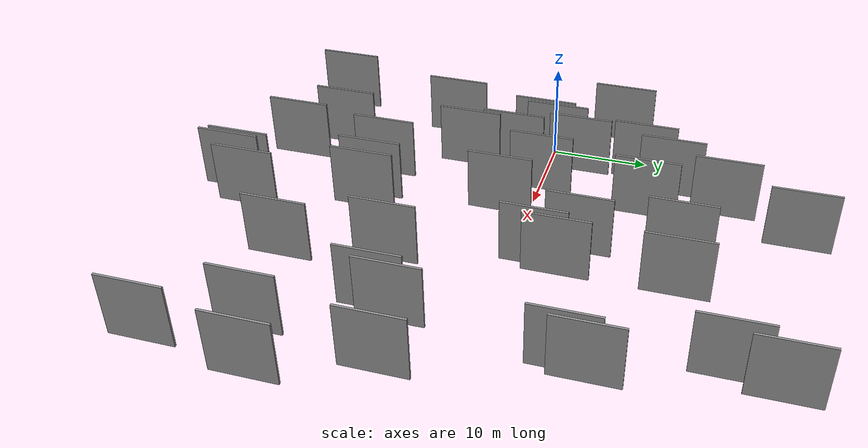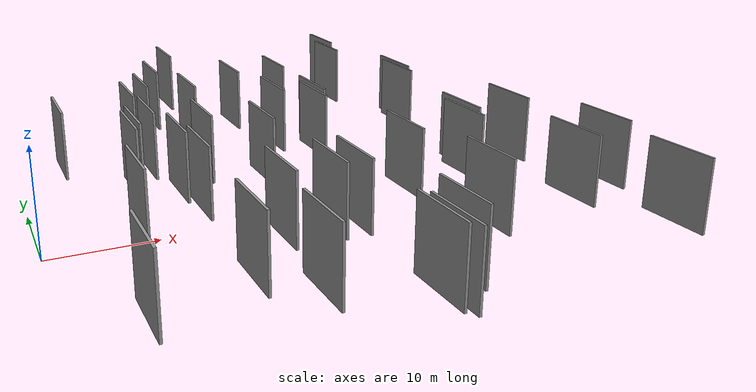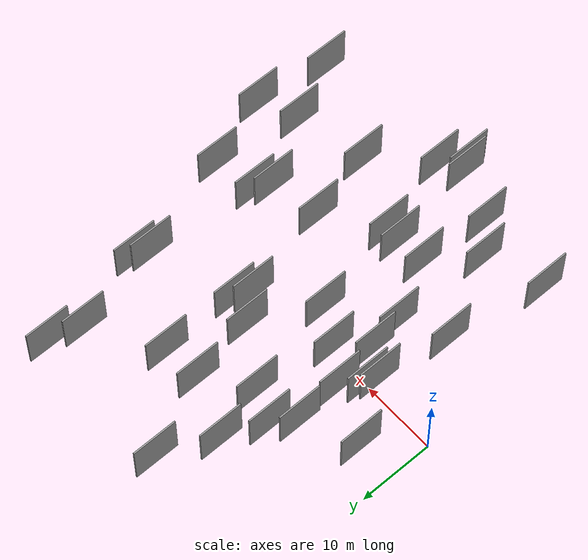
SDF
<sdf version="1.6">
 <world name="default">
  <scene>
   <sky><clouds><speed>12</speed></clouds></sky>
   <ambient>0.4 0.4 0.4 1</ambient>
   <background>0.7 0.7 0.7 1</background>
   <shadows>1</shadows>
  </scene>
  <gravity>0 0 -9.8066</gravity>
  <magnetic_field>6e-06 2.3e-05 -4.2e-05</magnetic_field>
  <physics default="0" name="default_physics" type="ode">
   <ode>
    <solver>
     <type>quick</type>
     <iters>10</iters>
     <sor>1.0</sor>
     <use_dynamic_moi_rescaling>0</use_dynamic_moi_rescaling>
    </solver>
    <constraints>
     <cfm>0</cfm>
     <erp>0.2</erp>
     <contact_max_correcting_vel>100</contact_max_correcting_vel>
     <contact_surface_layer>0.001</contact_surface_layer>
    </constraints>
   </ode>
   <max_step_size>0.004</max_step_size>
   <real_time_factor>1</real_time_factor>
   <real_time_update_rate>250</real_time_update_rate>
  </physics>
  <light name="sun" type="directional">
   <pose>0 0 10 0 0 0</pose>
   <diffuse>0.8 0.8 0.8 1</diffuse>
   <specular>0.2 0.2 0.2 1</specular>
   <attenuation>
    <range>1000</range>
    <constant>0.9</constant>
    <linear>0.01</linear>
    <quadratic>0.001</quadratic>
   </attenuation>
   <direction>-0.5 0.1 -0.9</direction>
  </light>
  <model name="grey_wall_1">
   <static>1</static>
   <pose>3.9259 -21.7571 5.0 0.000000 0.000000 1.570796</pose>
   <link name="link">
    <pose>0 0 3.00 0 0 0</pose>
    <collision name="collision"><geometry><box><size>6.00 0.2 6.00</size></box></geometry></collision>
    <visual name="visual">
     <cast_shadows>0</cast_shadows>
     <geometry><box><size>6.00 0.2 6.00</size></box></geometry>
     <material>
      <script>
       <uri>model://grey_wall/materials/scripts</uri>
       <uri>model://grey_wall/materials/textures</uri>
       <name>vrc/grey_wall</name>
      </script>
     </material>
    </visual>
   </link>
  </model>
  <model name="grey_wall_2">
   <static>1</static>
   <pose>26.8779 5.8839 5.0 0.000000 0.000000 1.570796</pose>
   <link name="link">
    <pose>0 0 3.00 0 0 0</pose>
    <collision name="collision"><geometry><box><size>6.00 0.2 6.00</size></box></geometry></collision>
    <visual name="visual">
     <cast_shadows>0</cast_shadows>
     <geometry><box><size>6.00 0.2 6.00</size></box></geometry>
     <material>
      <script>
       <uri>model://grey_wall/materials/scripts</uri>
       <uri>model://grey_wall/materials/textures</uri>
       <name>vrc/grey_wall</name>
      </script>
     </material>
    </visual>
   </link>
  </model>
  <model name="grey_wall_3">
   <static>1</static>
   <pose>36.7139 25.4663 5.0 0.000000 0.000000 1.570796</pose>
   <link name="link">
    <pose>0 0 3.00 0 0 0</pose>
    <collision name="collision"><geometry><box><size>6.00 0.2 6.00</size></box></geometry></collision>
    <visual name="visual">
     <cast_shadows>0</cast_shadows>
     <geometry><box><size>6.00 0.2 6.00</size></box></geometry>
     <material>
      <script>
       <uri>model://grey_wall/materials/scripts</uri>
       <uri>model://grey_wall/materials/textures</uri>
       <name>vrc/grey_wall</name>
      </script>
     </material>
    </visual>
   </link>
  </model>
  <model name="grey_wall_4">
   <static>1</static>
   <pose>11.3556 -1.8661 5.0 0.000000 0.000000 1.570796</pose>
   <link name="link">
    <pose>0 0 3.00 0 0 0</pose>
    <collision name="collision"><geometry><box><size>6.00 0.2 6.00</size></box></geometry></collision>
    <visual name="visual">
     <cast_shadows>0</cast_shadows>
     <geometry><box><size>6.00 0.2 6.00</size></box></geometry>
     <material>
      <script>
       <uri>model://grey_wall/materials/scripts</uri>
       <uri>model://grey_wall/materials/textures</uri>
       <name>vrc/grey_wall</name>
      </script>
     </material>
    </visual>
   </link>
  </model>
  <model name="grey_wall_5">
   <static>1</static>
   <pose>42.1782 -4.7063 5.0 0.000000 0.000000 1.570796</pose>
   <link name="link">
    <pose>0 0 3.00 0 0 0</pose>
    <collision name="collision"><geometry><box><size>6.00 0.2 6.00</size></box></geometry></collision>
    <visual name="visual">
     <cast_shadows>0</cast_shadows>
     <geometry><box><size>6.00 0.2 6.00</size></box></geometry>
     <material>
      <script>
       <uri>model://grey_wall/materials/scripts</uri>
       <uri>model://grey_wall/materials/textures</uri>
       <name>vrc/grey_wall</name>
      </script>
     </material>
    </visual>
   </link>
  </model>
  <model name="grey_wall_6">
   <static>1</static>
   <pose>15.8145 -13.5879 5.0 0.000000 0.000000 1.570796</pose>
   <link name="link">
    <pose>0 0 3.00 0 0 0</pose>
    <collision name="collision"><geometry><box><size>6.00 0.2 6.00</size></box></geometry></collision>
    <visual name="visual">
     <cast_shadows>0</cast_shadows>
     <geometry><box><size>6.00 0.2 6.00</size></box></geometry>
     <material>
      <script>
       <uri>model://grey_wall/materials/scripts</uri>
       <uri>model://grey_wall/materials/textures</uri>
       <name>vrc/grey_wall</name>
      </script>
     </material>
    </visual>
   </link>
  </model>
  <model name="grey_wall_7">
   <static>1</static>
   <pose>38.7719 10.8940 5.0 0.000000 0.000000 1.570796</pose>
   <link name="link">
    <pose>0 0 3.00 0 0 0</pose>
    <collision name="collision"><geometry><box><size>6.00 0.2 6.00</size></box></geometry></collision>
    <visual name="visual">
     <cast_shadows>0</cast_shadows>
     <geometry><box><size>6.00 0.2 6.00</size></box></geometry>
     <material>
      <script>
       <uri>model://grey_wall/materials/scripts</uri>
       <uri>model://grey_wall/materials/textures</uri>
       <name>vrc/grey_wall</name>
      </script>
     </material>
    </visual>
   </link>
  </model>
  <model name="grey_wall_8">
   <static>1</static>
   <pose>3.2657 7.6805 5.0 0.000000 0.000000 1.570796</pose>
   <link name="link">
    <pose>0 0 3.00 0 0 0</pose>
    <collision name="collision"><geometry><box><size>6.00 0.2 6.00</size></box></geometry></collision>
    <visual name="visual">
     <cast_shadows>0</cast_shadows>
     <geometry><box><size>6.00 0.2 6.00</size></box></geometry>
     <material>
      <script>
       <uri>model://grey_wall/materials/scripts</uri>
       <uri>model://grey_wall/materials/textures</uri>
       <name>vrc/grey_wall</name>
      </script>
     </material>
    </visual>
   </link>
  </model>
  <model name="grey_wall_9">
   <static>1</static>
   <pose>38.0455 9.0339 5.0 0.000000 0.000000 1.570796</pose>
   <link name="link">
    <pose>0 0 3.00 0 0 0</pose>
    <collision name="collision"><geometry><box><size>6.00 0.2 6.00</size></box></geometry></collision>
    <visual name="visual">
     <cast_shadows>0</cast_shadows>
     <geometry><box><size>6.00 0.2 6.00</size></box></geometry>
     <material>
      <script>
       <uri>model://grey_wall/materials/scripts</uri>
       <uri>model://grey_wall/materials/textures</uri>
       <name>vrc/grey_wall</name>
      </script>
     </material>
    </visual>
   </link>
  </model>
  <model name="grey_wall_10">
   <static>1</static>
   <pose>17.4022 25.7129 5.0 0.000000 0.000000 1.570796</pose>
   <link name="link">
    <pose>0 0 3.00 0 0 0</pose>
    <collision name="collision"><geometry><box><size>6.00 0.2 6.00</size></box></geometry></collision>
    <visual name="visual">
     <cast_shadows>0</cast_shadows>
     <geometry><box><size>6.00 0.2 6.00</size></box></geometry>
     <material>
      <script>
       <uri>model://grey_wall/materials/scripts</uri>
       <uri>model://grey_wall/materials/textures</uri>
       <name>vrc/grey_wall</name>
      </script>
     </material>
    </visual>
   </link>
  </model>
  <model name="grey_wall_11">
   <static>1</static>
   <pose>26.0199 3.7318 5.0 0.000000 0.000000 1.570796</pose>
   <link name="link">
    <pose>0 0 3.00 0 0 0</pose>
    <collision name="collision"><geometry><box><size>6.00 0.2 6.00</size></box></geometry></collision>
    <visual name="visual">
     <cast_shadows>0</cast_shadows>
     <geometry><box><size>6.00 0.2 6.00</size></box></geometry>
     <material>
      <script>
       <uri>model://grey_wall/materials/scripts</uri>
       <uri>model://grey_wall/materials/textures</uri>
       <name>vrc/grey_wall</name>
      </script>
     </material>
    </visual>
   </link>
  </model>
  <model name="grey_wall_12">
   <static>1</static>
   <pose>7.9821 0.4993 5.0 0.000000 0.000000 1.570796</pose>
   <link name="link">
    <pose>0 0 3.00 0 0 0</pose>
    <collision name="collision"><geometry><box><size>6.00 0.2 6.00</size></box></geometry></collision>
    <visual name="visual">
     <cast_shadows>0</cast_shadows>
     <geometry><box><size>6.00 0.2 6.00</size></box></geometry>
     <material>
      <script>
       <uri>model://grey_wall/materials/scripts</uri>
       <uri>model://grey_wall/materials/textures</uri>
       <name>vrc/grey_wall</name>
      </script>
     </material>
    </visual>
   </link>
  </model>
  <model name="grey_wall_13">
   <static>1</static>
   <pose>8.5940 1.8616 5.0 0.000000 0.000000 1.570796</pose>
   <link name="link">
    <pose>0 0 3.00 0 0 0</pose>
    <collision name="collision"><geometry><box><size>6.00 0.2 6.00</size></box></geometry></collision>
    <visual name="visual">
     <cast_shadows>0</cast_shadows>
     <geometry><box><size>6.00 0.2 6.00</size></box></geometry>
     <material>
      <script>
       <uri>model://grey_wall/materials/scripts</uri>
       <uri>model://grey_wall/materials/textures</uri>
       <name>vrc/grey_wall</name>
      </script>
     </material>
    </visual>
   </link>
  </model>
  <model name="grey_wall_14">
   <static>1</static>
   <pose>43.8966 -23.6323 5.0 0.000000 0.000000 1.570796</pose>
   <link name="link">
    <pose>0 0 3.00 0 0 0</pose>
    <collision name="collision"><geometry><box><size>6.00 0.2 6.00</size></box></geometry></collision>
    <visual name="visual">
     <cast_shadows>0</cast_shadows>
     <geometry><box><size>6.00 0.2 6.00</size></box></geometry>
     <material>
      <script>
       <uri>model://grey_wall/materials/scripts</uri>
       <uri>model://grey_wall/materials/textures</uri>
       <name>vrc/grey_wall</name>
      </script>
     </material>
    </visual>
   </link>
  </model>
  <model name="grey_wall_15">
   <static>1</static>
   <pose>21.7795 15.7730 5.0 0.000000 0.000000 1.570796</pose>
   <link name="link">
    <pose>0 0 3.00 0 0 0</pose>
    <collision name="collision"><geometry><box><size>6.00 0.2 6.00</size></box></geometry></collision>
    <visual name="visual">
     <cast_shadows>0</cast_shadows>
     <geometry><box><size>6.00 0.2 6.00</size></box></geometry>
     <material>
      <script>
       <uri>model://grey_wall/materials/scripts</uri>
       <uri>model://grey_wall/materials/textures</uri>
       <name>vrc/grey_wall</name>
      </script>
     </material>
    </visual>
   </link>
  </model>
  <model name="grey_wall_16">
   <static>1</static>
   <pose>10.0365 10.7989 5.0 0.000000 0.000000 1.570796</pose>
   <link name="link">
    <pose>0 0 3.00 0 0 0</pose>
    <collision name="collision"><geometry><box><size>6.00 0.2 6.00</size></box></geometry></collision>
    <visual name="visual">
     <cast_shadows>0</cast_shadows>
     <geometry><box><size>6.00 0.2 6.00</size></box></geometry>
     <material>
      <script>
       <uri>model://grey_wall/materials/scripts</uri>
       <uri>model://grey_wall/materials/textures</uri>
       <name>vrc/grey_wall</name>
      </script>
     </material>
    </visual>
   </link>
  </model>
  <model name="grey_wall_17">
   <static>1</static>
   <pose>26.8397 16.1362 5.0 0.000000 0.000000 1.570796</pose>
   <link name="link">
    <pose>0 0 3.00 0 0 0</pose>
    <collision name="collision"><geometry><box><size>6.00 0.2 6.00</size></box></geometry></collision>
    <visual name="visual">
     <cast_shadows>0</cast_shadows>
     <geometry><box><size>6.00 0.2 6.00</size></box></geometry>
     <material>
      <script>
       <uri>model://grey_wall/materials/scripts</uri>
       <uri>model://grey_wall/materials/textures</uri>
       <name>vrc/grey_wall</name>
      </script>
     </material>
    </visual>
   </link>
  </model>
  <model name="grey_wall_18">
   <static>1</static>
   <pose>14.5196 1.6398 5.0 0.000000 0.000000 1.570796</pose>
   <link name="link">
    <pose>0 0 3.00 0 0 0</pose>
    <collision name="collision"><geometry><box><size>6.00 0.2 6.00</size></box></geometry></collision>
    <visual name="visual">
     <cast_shadows>0</cast_shadows>
     <geometry><box><size>6.00 0.2 6.00</size></box></geometry>
     <material>
      <script>
       <uri>model://grey_wall/materials/scripts</uri>
       <uri>model://grey_wall/materials/textures</uri>
       <name>vrc/grey_wall</name>
      </script>
     </material>
    </visual>
   </link>
  </model>
  <model name="grey_wall_19">
   <static>1</static>
   <pose>30.9161 -17.8675 5.0 0.000000 0.000000 1.570796</pose>
   <link name="link">
    <pose>0 0 3.00 0 0 0</pose>
    <collision name="collision"><geometry><box><size>6.00 0.2 6.00</size></box></geometry></collision>
    <visual name="visual">
     <cast_shadows>0</cast_shadows>
     <geometry><box><size>6.00 0.2 6.00</size></box></geometry>
     <material>
      <script>
       <uri>model://grey_wall/materials/scripts</uri>
       <uri>model://grey_wall/materials/textures</uri>
       <name>vrc/grey_wall</name>
      </script>
     </material>
    </visual>
   </link>
  </model>
  <model name="grey_wall_20">
   <static>1</static>
   <pose>11.5181 -19.2838 5.0 0.000000 0.000000 1.570796</pose>
   <link name="link">
    <pose>0 0 3.00 0 0 0</pose>
    <collision name="collision"><geometry><box><size>6.00 0.2 6.00</size></box></geometry></collision>
    <visual name="visual">
     <cast_shadows>0</cast_shadows>
     <geometry><box><size>6.00 0.2 6.00</size></box></geometry>
     <material>
      <script>
       <uri>model://grey_wall/materials/scripts</uri>
       <uri>model://grey_wall/materials/textures</uri>
       <name>vrc/grey_wall</name>
      </script>
     </material>
    </visual>
   </link>
  </model>
  <model name="grey_wall_21">
   <static>1</static>
   <pose>45.3919 -13.9684 5.0 0.000000 0.000000 1.570796</pose>
   <link name="link">
    <pose>0 0 3.00 0 0 0</pose>
    <collision name="collision"><geometry><box><size>6.00 0.2 6.00</size></box></geometry></collision>
    <visual name="visual">
     <cast_shadows>0</cast_shadows>
     <geometry><box><size>6.00 0.2 6.00</size></box></geometry>
     <material>
      <script>
       <uri>model://grey_wall/materials/scripts</uri>
       <uri>model://grey_wall/materials/textures</uri>
       <name>vrc/grey_wall</name>
      </script>
     </material>
    </visual>
   </link>
  </model>
  <model name="grey_wall_22">
   <static>1</static>
   <pose>19.0229 -1.1581 5.0 0.000000 0.000000 1.570796</pose>
   <link name="link">
    <pose>0 0 3.00 0 0 0</pose>
    <collision name="collision"><geometry><box><size>6.00 0.2 6.00</size></box></geometry></collision>
    <visual name="visual">
     <cast_shadows>0</cast_shadows>
     <geometry><box><size>6.00 0.2 6.00</size></box></geometry>
     <material>
      <script>
       <uri>model://grey_wall/materials/scripts</uri>
       <uri>model://grey_wall/materials/textures</uri>
       <name>vrc/grey_wall</name>
      </script>
     </material>
    </visual>
   </link>
  </model>
  <model name="grey_wall_23">
   <static>1</static>
   <pose>16.0900 11.8398 5.0 0.000000 0.000000 1.570796</pose>
   <link name="link">
    <pose>0 0 3.00 0 0 0</pose>
    <collision name="collision"><geometry><box><size>6.00 0.2 6.00</size></box></geometry></collision>
    <visual name="visual">
     <cast_shadows>0</cast_shadows>
     <geometry><box><size>6.00 0.2 6.00</size></box></geometry>
     <material>
      <script>
       <uri>model://grey_wall/materials/scripts</uri>
       <uri>model://grey_wall/materials/textures</uri>
       <name>vrc/grey_wall</name>
      </script>
     </material>
    </visual>
   </link>
  </model>
  <model name="grey_wall_24">
   <static>1</static>
   <pose>23.2477 7.0953 5.0 0.000000 0.000000 1.570796</pose>
   <link name="link">
    <pose>0 0 3.00 0 0 0</pose>
    <collision name="collision"><geometry><box><size>6.00 0.2 6.00</size></box></geometry></collision>
    <visual name="visual">
     <cast_shadows>0</cast_shadows>
     <geometry><box><size>6.00 0.2 6.00</size></box></geometry>
     <material>
      <script>
       <uri>model://grey_wall/materials/scripts</uri>
       <uri>model://grey_wall/materials/textures</uri>
       <name>vrc/grey_wall</name>
      </script>
     </material>
    </visual>
   </link>
  </model>
  <model name="grey_wall_25">
   <static>1</static>
   <pose>11.9560 -6.0699 5.0 0.000000 0.000000 1.570796</pose>
   <link name="link">
    <pose>0 0 3.00 0 0 0</pose>
    <collision name="collision"><geometry><box><size>6.00 0.2 6.00</size></box></geometry></collision>
    <visual name="visual">
     <cast_shadows>0</cast_shadows>
     <geometry><box><size>6.00 0.2 6.00</size></box></geometry>
     <material>
      <script>
       <uri>model://grey_wall/materials/scripts</uri>
       <uri>model://grey_wall/materials/textures</uri>
       <name>vrc/grey_wall</name>
      </script>
     </material>
    </visual>
   </link>
  </model>
  <model name="grey_wall_26">
   <static>1</static>
   <pose>10.3562 4.5099 5.0 0.000000 0.000000 1.570796</pose>
   <link name="link">
    <pose>0 0 3.00 0 0 0</pose>
    <collision name="collision"><geometry><box><size>6.00 0.2 6.00</size></box></geometry></collision>
    <visual name="visual">
     <cast_shadows>0</cast_shadows>
     <geometry><box><size>6.00 0.2 6.00</size></box></geometry>
     <material>
      <script>
       <uri>model://grey_wall/materials/scripts</uri>
       <uri>model://grey_wall/materials/textures</uri>
       <name>vrc/grey_wall</name>
      </script>
     </material>
    </visual>
   </link>
  </model>
  <model name="grey_wall_27">
   <static>1</static>
   <pose>14.9009 -22.8455 5.0 0.000000 0.000000 1.570796</pose>
   <link name="link">
    <pose>0 0 3.00 0 0 0</pose>
    <collision name="collision"><geometry><box><size>6.00 0.2 6.00</size></box></geometry></collision>
    <visual name="visual">
     <cast_shadows>0</cast_shadows>
     <geometry><box><size>6.00 0.2 6.00</size></box></geometry>
     <material>
      <script>
       <uri>model://grey_wall/materials/scripts</uri>
       <uri>model://grey_wall/materials/textures</uri>
       <name>vrc/grey_wall</name>
      </script>
     </material>
    </visual>
   </link>
  </model>
  <model name="grey_wall_28">
   <static>1</static>
   <pose>14.2074 18.8831 5.0 0.000000 0.000000 1.570796</pose>
   <link name="link">
    <pose>0 0 3.00 0 0 0</pose>
    <collision name="collision"><geometry><box><size>6.00 0.2 6.00</size></box></geometry></collision>
    <visual name="visual">
     <cast_shadows>0</cast_shadows>
     <geometry><box><size>6.00 0.2 6.00</size></box></geometry>
     <material>
      <script>
       <uri>model://grey_wall/materials/scripts</uri>
       <uri>model://grey_wall/materials/textures</uri>
       <name>vrc/grey_wall</name>
      </script>
     </material>
    </visual>
   </link>
  </model>
  <model name="grey_wall_29">
   <static>1</static>
   <pose>35.3773 -7.5864 5.0 0.000000 0.000000 1.570796</pose>
   <link name="link">
    <pose>0 0 3.00 0 0 0</pose>
    <collision name="collision"><geometry><box><size>6.00 0.2 6.00</size></box></geometry></collision>
    <visual name="visual">
     <cast_shadows>0</cast_shadows>
     <geometry><box><size>6.00 0.2 6.00</size></box></geometry>
     <material>
      <script>
       <uri>model://grey_wall/materials/scripts</uri>
       <uri>model://grey_wall/materials/textures</uri>
       <name>vrc/grey_wall</name>
      </script>
     </material>
    </visual>
   </link>
  </model>
  <model name="grey_wall_30">
   <static>1</static>
   <pose>28.7847 -8.8070 5.0 0.000000 0.000000 1.570796</pose>
   <link name="link">
    <pose>0 0 3.00 0 0 0</pose>
    <collision name="collision"><geometry><box><size>6.00 0.2 6.00</size></box></geometry></collision>
    <visual name="visual">
     <cast_shadows>0</cast_shadows>
     <geometry><box><size>6.00 0.2 6.00</size></box></geometry>
     <material>
      <script>
       <uri>model://grey_wall/materials/scripts</uri>
       <uri>model://grey_wall/materials/textures</uri>
       <name>vrc/grey_wall</name>
      </script>
     </material>
    </visual>
   </link>
  </model>
  <model name="grey_wall_31">
   <static>1</static>
   <pose>21.7686 -13.5396 5.0 0.000000 0.000000 1.570796</pose>
   <link name="link">
    <pose>0 0 3.00 0 0 0</pose>
    <collision name="collision"><geometry><box><size>6.00 0.2 6.00</size></box></geometry></collision>
    <visual name="visual">
     <cast_shadows>0</cast_shadows>
     <geometry><box><size>6.00 0.2 6.00</size></box></geometry>
     <material>
      <script>
       <uri>model://grey_wall/materials/scripts</uri>
       <uri>model://grey_wall/materials/textures</uri>
       <name>vrc/grey_wall</name>
      </script>
     </material>
    </visual>
   </link>
  </model>
  <model name="grey_wall_32">
   <static>1</static>
   <pose>21.5791 -26.0073 5.0 0.000000 0.000000 1.570796</pose>
   <link name="link">
    <pose>0 0 3.00 0 0 0</pose>
    <collision name="collision"><geometry><box><size>6.00 0.2 6.00</size></box></geometry></collision>
    <visual name="visual">
     <cast_shadows>0</cast_shadows>
     <geometry><box><size>6.00 0.2 6.00</size></box></geometry>
     <material>
      <script>
       <uri>model://grey_wall/materials/scripts</uri>
       <uri>model://grey_wall/materials/textures</uri>
       <name>vrc/grey_wall</name>
      </script>
     </material>
    </visual>
   </link>
  </model>
  <model name="grey_wall_33">
   <static>1</static>
   <pose>6.3853 -8.9904 5.0 0.000000 0.000000 1.570796</pose>
   <link name="link">
    <pose>0 0 3.00 0 0 0</pose>
    <collision name="collision"><geometry><box><size>6.00 0.2 6.00</size></box></geometry></collision>
    <visual name="visual">
     <cast_shadows>0</cast_shadows>
     <geometry><box><size>6.00 0.2 6.00</size></box></geometry>
     <material>
      <script>
       <uri>model://grey_wall/materials/scripts</uri>
       <uri>model://grey_wall/materials/textures</uri>
       <name>vrc/grey_wall</name>
      </script>
     </material>
    </visual>
   </link>
  </model>
  <model name="grey_wall_34">
   <static>1</static>
   <pose>11.9629 13.6195 5.0 0.000000 0.000000 1.570796</pose>
   <link name="link">
    <pose>0 0 3.00 0 0 0</pose>
    <collision name="collision"><geometry><box><size>6.00 0.2 6.00</size></box></geometry></collision>
    <visual name="visual">
     <cast_shadows>0</cast_shadows>
     <geometry><box><size>6.00 0.2 6.00</size></box></geometry>
     <material>
      <script>
       <uri>model://grey_wall/materials/scripts</uri>
       <uri>model://grey_wall/materials/textures</uri>
       <name>vrc/grey_wall</name>
      </script>
     </material>
    </visual>
   </link>
  </model>
  <model name="grey_wall_35">
   <static>1</static>
   <pose>24.4232 -24.1632 5.0 0.000000 0.000000 1.570796</pose>
   <link name="link">
    <pose>0 0 3.00 0 0 0</pose>
    <collision name="collision"><geometry><box><size>6.00 0.2 6.00</size></box></geometry></collision>
    <visual name="visual">
     <cast_shadows>0</cast_shadows>
     <geometry><box><size>6.00 0.2 6.00</size></box></geometry>
     <material>
      <script>
       <uri>model://grey_wall/materials/scripts</uri>
       <uri>model://grey_wall/materials/textures</uri>
       <name>vrc/grey_wall</name>
      </script>
     </material>
    </visual>
   </link>
  </model>
  <model name="grey_wall_36">
   <static>1</static>
   <pose>19.7768 -13.5049 5.0 0.000000 0.000000 1.570796</pose>
   <link name="link">
    <pose>0 0 3.00 0 0 0</pose>
    <collision name="collision"><geometry><box><size>6.00 0.2 6.00</size></box></geometry></collision>
    <visual name="visual">
     <cast_shadows>0</cast_shadows>
     <geometry><box><size>6.00 0.2 6.00</size></box></geometry>
     <material>
      <script>
       <uri>model://grey_wall/materials/scripts</uri>
       <uri>model://grey_wall/materials/textures</uri>
       <name>vrc/grey_wall</name>
      </script>
     </material>
    </visual>
   </link>
  </model>
  <model name="grey_wall_37">
   <static>1</static>
   <pose>35.4725 21.2256 5.0 0.000000 0.000000 1.570796</pose>
   <link name="link">
    <pose>0 0 3.00 0 0 0</pose>
    <collision name="collision"><geometry><box><size>6.00 0.2 6.00</size></box></geometry></collision>
    <visual name="visual">
     <cast_shadows>0</cast_shadows>
     <geometry><box><size>6.00 0.2 6.00</size></box></geometry>
     <material>
      <script>
       <uri>model://grey_wall/materials/scripts</uri>
       <uri>model://grey_wall/materials/textures</uri>
       <name>vrc/grey_wall</name>
      </script>
     </material>
    </visual>
   </link>
  </model>
  <model name="grey_wall_38">
   <static>1</static>
   <pose>40.3568 -16.1003 5.0 0.000000 0.000000 1.570796</pose>
   <link name="link">
    <pose>0 0 3.00 0 0 0</pose>
    <collision name="collision"><geometry><box><size>6.00 0.2 6.00</size></box></geometry></collision>
    <visual name="visual">
     <cast_shadows>0</cast_shadows>
     <geometry><box><size>6.00 0.2 6.00</size></box></geometry>
     <material>
      <script>
       <uri>model://grey_wall/materials/scripts</uri>
       <uri>model://grey_wall/materials/textures</uri>
       <name>vrc/grey_wall</name>
      </script>
     </material>
    </visual>
   </link>
  </model>
  <model name="grey_wall_39">
   <static>1</static>
   <pose>22.1555 -26.7448 5.0 0.000000 0.000000 1.570796</pose>
   <link name="link">
    <pose>0 0 3.00 0 0 0</pose>
    <collision name="collision"><geometry><box><size>6.00 0.2 6.00</size></box></geometry></collision>
    <visual name="visual">
     <cast_shadows>0</cast_shadows>
     <geometry><box><size>6.00 0.2 6.00</size></box></geometry>
     <material>
      <script>
       <uri>model://grey_wall/materials/scripts</uri>
       <uri>model://grey_wall/materials/textures</uri>
       <name>vrc/grey_wall</name>
      </script>
     </material>
    </visual>
   </link>
  </model>
  <model name="grey_wall_40">
   <static>1</static>
   <pose>36.3916 -5.5601 5.0 0.000000 0.000000 1.570796</pose>
   <link name="link">
    <pose>0 0 3.00 0 0 0</pose>
    <collision name="collision"><geometry><box><size>6.00 0.2 6.00</size></box></geometry></collision>
    <visual name="visual">
     <cast_shadows>0</cast_shadows>
     <geometry><box><size>6.00 0.2 6.00</size></box></geometry>
     <material>
      <script>
       <uri>model://grey_wall/materials/scripts</uri>
       <uri>model://grey_wall/materials/textures</uri>
       <name>vrc/grey_wall</name>
      </script>
     </material>
    </visual>
   </link>
  </model>
 </world>
</sdf>
